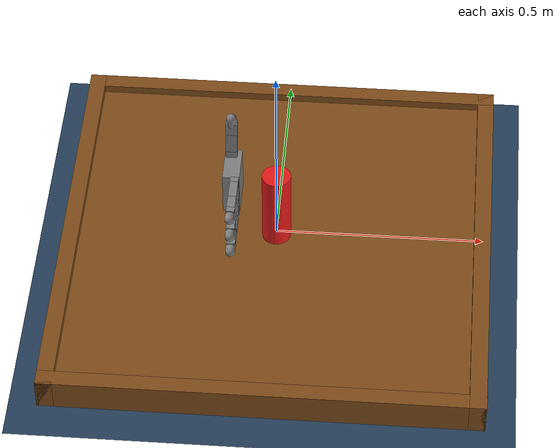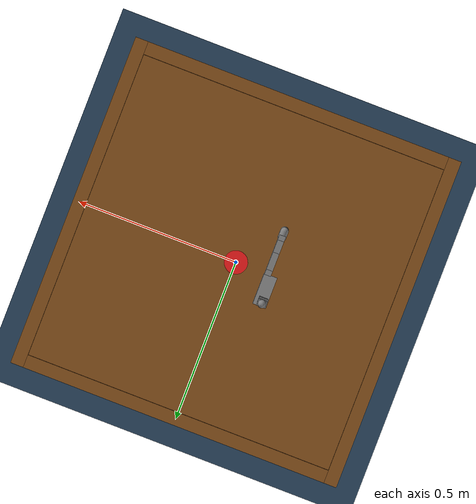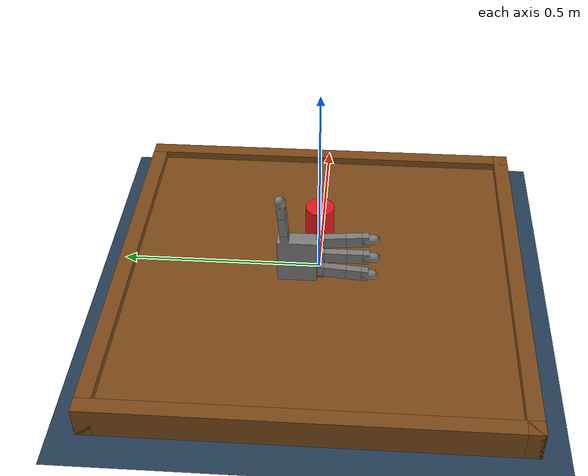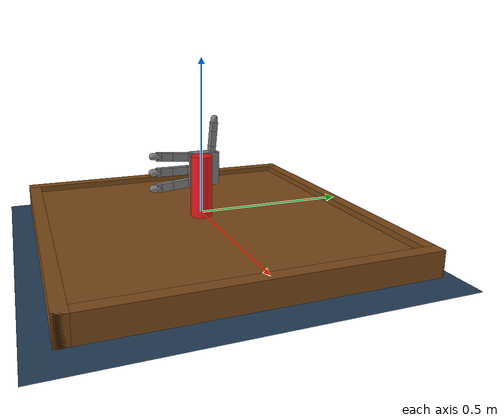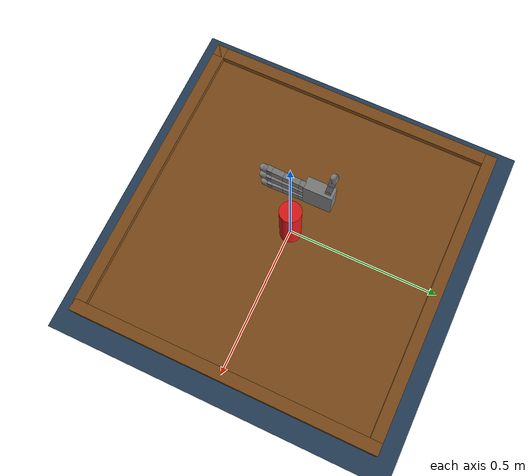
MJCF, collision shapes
<mujoco model="right_allegro_hand scene">
  <compiler angle="radian" meshdir="assets/" autolimits="true"/>
  <option cone="elliptic"/>
  <visual>
    <global azimuth="130" elevation="-40"/>
    <quality shadowsize="8192"/>
    <rgba haze="0.15 0.25 0.35 1"/>
  </visual>
  <statistic meansize="0.0812824" extent="0.3" center="0 0 0"/>
  <default class="main">
    <default class="allegro_right">
      <joint damping="0.1"/>
      <geom density="800"/>
      <general biastype="affine" biasprm="0 -1 0 0 0 0 0 0 0 0"/>
      <default class="visual">
        <geom type="mesh" contype="0" conaffinity="0" group="2" material="black"/>
        <default class="palm_visual">
          <geom mesh="base_link"/>
        </default>
        <default class="base_visual">
          <geom mesh="link_0.0"/>
        </default>
        <default class="proximal_visual">
          <geom mesh="link_1.0"/>
        </default>
        <default class="medial_visual">
          <geom mesh="link_2.0"/>
        </default>
        <default class="distal_visual">
          <geom mesh="link_3.0"/>
        </default>
        <default class="fingertip_visual">
          <geom material="white" mesh="link_3.0_tip"/>
        </default>
        <default class="thumbtip_visual">
          <geom material="white" mesh="link_15.0_tip"/>
        </default>
      </default>
      <default class="collision">
        <geom type="box" group="3"/>
        <default class="palm_collision">
          <geom size="0.0204 0.0565 0.0475"/>
        </default>
        <default class="base_collision">
          <geom size="0.0098 0.01375 0.0082"/>
          <default class="thumb_base_collision">
            <geom size="0.0179 0.017 0.02275"/>
          </default>
        </default>
        <default class="proximal_collision">
          <geom size="0.0098 0.01375 0.027"/>
          <default class="thumb_proximal_collision">
            <geom size="0.0098 0.01375 0.00885"/>
          </default>
        </default>
        <default class="medial_collision">
          <geom size="0.0098 0.01375 0.0192"/>
          <default class="thumb_medial_collision">
            <geom size="0.0098 0.01375 0.0257"/>
          </default>
        </default>
        <default class="distal_collision">
          <geom size="0.0098 0.01375 0.008"/>
          <default class="thumb_distal_collision">
            <geom size="0.0098 0.01375 0.0157"/>
          </default>
        </default>
        <default class="fingertip_collision">
          <geom size="0.012 0.01 0" type="capsule"/>
          <default class="thumbtip_collision">
            <geom size="0.012 0.008 0"/>
          </default>
        </default>
      </default>
      <default class="rootx_c">
        <joint range="-20 20"/>
        <general ctrlrange="-5 5" gainprm="100 0 0 0 0 0 0 0 0 0" biasprm="0 -100 0 0 0 0 0 0 0 0"/>
      </default>
      <default class="rooty_c">
        <joint range="-20 20"/>
        <general ctrlrange="-5 5" gainprm="100 0 0 0 0 0 0 0 0 0" biasprm="0 -100 0 0 0 0 0 0 0 0"/>
      </default>
      <default class="rootz_c">
        <joint range="-20 20"/>
        <general ctrlrange="-5 5" gainprm="100 0 0 0 0 0 0 0 0 0" biasprm="0 -100 0 0 0 0 0 0 0 0"/>
      </default>
      <default class="base">
        <joint range="-0.47 0.47"/>
        <general ctrlrange="-0.47 0.47"/>
      </default>
      <default class="proximal">
        <joint range="-0.196 1.61"/>
        <general ctrlrange="-0.196 1.61"/>
      </default>
      <default class="medial">
        <joint range="-0.174 1.709"/>
        <general ctrlrange="-0.174 1.709"/>
      </default>
      <default class="distal">
        <joint range="-0.227 1.618"/>
        <general ctrlrange="-0.227 1.618"/>
      </default>
      <default class="thumb_base">
        <joint range="0.263 1.396"/>
        <general ctrlrange="0.263 1.396"/>
      </default>
      <default class="thumb_proximal">
        <joint range="-0.105 1.163"/>
        <general ctrlrange="-0.105 1.163"/>
      </default>
      <default class="thumb_medial">
        <joint range="-0.189 1.644"/>
        <general ctrlrange="-0.189 1.644"/>
      </default>
      <default class="thumb_distal">
        <joint range="-0.162 1.719"/>
        <general ctrlrange="-0.162 1.719"/>
      </default>
    </default>
  </default>
  <asset>
    <texture type="skybox" builtin="gradient" rgb1="0.3 0.5 0.7" rgb2="0 0 0" width="512" height="3072"/>
    <texture type="2d" name="groundplane" builtin="checker" mark="edge" rgb1="0.2 0.3 0.4" rgb2="0.1 0.2 0.3" markrgb="0.8 0.8 0.8" width="300" height="300"/>
    <material name="black" rgba="0.2 0.2 0.2 1"/>
    <material name="white" rgba="0.9 0.9 0.9 1"/>
    <material name="groundplane" texture="groundplane" texuniform="true" texrepeat="5 5" reflectance="0.2"/>
    <mesh name="base_link" file="base_link.stl"/>
    <mesh name="link_0.0" file="link_0.0.stl"/>
    <mesh name="link_1.0" file="link_1.0.stl"/>
    <mesh name="link_2.0" file="link_2.0.stl"/>
    <mesh name="link_3.0" file="link_3.0.stl"/>
    <mesh name="link_3.0_tip" file="link_3.0_tip.stl"/>
    <mesh name="link_12.0_right" file="link_12.0_right.stl"/>
    <mesh name="link_13.0" file="link_13.0.stl"/>
    <mesh name="link_14.0" file="link_14.0.stl"/>
    <mesh name="link_15.0" file="link_15.0.stl"/>
    <mesh name="link_15.0_tip" file="link_15.0_tip.stl"/>
  </asset>
  <worldbody>
    <geom name="floor" size="0 0 0.05" pos="0 0 -0.1" type="plane" material="groundplane"/>
    <light pos="0 0 1" dir="0 0 -1"/>
    <light pos="0.3 0 1.5" dir="0 0 -1" directional="true"/>
    <body name="rhand" childclass="allegro_right" pos="0 0 0.12" quat="0 0 0 0">
      <joint name="rootx" pos="0 0 0" axis="1 0 0" type="slide" range="-20 20" damping="100"/>
      <joint name="rooty" pos="0 0 0" axis="0 1 0" type="slide" range="-20 20" damping="100"/>
      <joint name="rootz" pos="0 0 0" axis="0 0 1" type="slide" range="-20 20" damping="100"/>
      <body name="palm" childclass="allegro_right" pos="-0.1 0 0" quat="0.707107 0.707107 0 0">
        <geom class="palm_visual" mesh="base_link"/>
        <geom class="palm_collision" pos="-0.0093 0 -0.0475" mass="0"/>
        <body name="ff_base" pos="0 0.0435 -0.001542" quat="0.999048 -0.0436194 0 0">
          <joint name="ffj0" class="base" pos="0 0 0" axis="0 0 1"/>
          <geom class="base_visual" mesh="link_0.0"/>
          <geom class="base_collision" pos="0 0 0.0082" mass="0"/>
          <body name="ff_proximal" pos="0 0 0.0164">
            <joint name="ffj1" class="proximal" pos="0 0 0" axis="0 1 0"/>
            <geom class="proximal_visual" mesh="link_1.0"/>
            <geom class="proximal_collision" pos="0 0 0.027" mass="0"/>
            <body name="ff_medial" pos="0 0 0.054">
              <joint name="ffj2" class="medial" pos="0 0 0" axis="0 1 0"/>
              <geom class="medial_visual" mesh="link_2.0"/>
              <geom class="medial_collision" pos="0 0 0.0192" mass="0"/>
              <body name="ff_distal" pos="0 0 0.0384">
                <joint name="ffj3" class="distal" pos="0 0 0" axis="0 1 0"/>
                <geom class="distal_visual" mesh="link_3.0"/>
                <geom class="distal_collision" pos="0 0 0.008" mass="0"/>
                <body name="ff_tip">
                  <geom class="fingertip_visual" pos="0 0 0.0267" mesh="link_3.0_tip"/>
                  <geom class="fingertip_collision" pos="0 0 0.019" mass="0"/>
                </body>
              </body>
            </body>
          </body>
        </body>
        <body name="mf_base" pos="0 0 0.0007">
          <joint name="mfj0" class="base" pos="0 0 0" axis="0 0 1"/>
          <geom class="base_visual" mesh="link_0.0"/>
          <geom class="base_collision" pos="0 0 0.0082" mass="0"/>
          <body name="mf_proximal" pos="0 0 0.0164">
            <joint name="mfj1" class="proximal" pos="0 0 0" axis="0 1 0"/>
            <geom class="proximal_visual" mesh="link_1.0"/>
            <geom class="proximal_collision" pos="0 0 0.027" mass="0"/>
            <body name="mf_medial" pos="0 0 0.054">
              <joint name="mfj2" class="medial" pos="0 0 0" axis="0 1 0"/>
              <geom class="medial_visual" mesh="link_2.0"/>
              <geom class="medial_collision" pos="0 0 0.0192" mass="0"/>
              <body name="mf_distal" pos="0 0 0.0384">
                <joint name="mfj3" class="distal" pos="0 0 0" axis="0 1 0"/>
                <geom class="distal_visual" mesh="link_3.0"/>
                <geom class="distal_collision" pos="0 0 0.008" mass="0"/>
                <body name="mf_tip">
                  <geom class="fingertip_visual" pos="0 0 0.0267" mesh="link_3.0_tip"/>
                  <geom class="fingertip_collision" pos="0 0 0.019" mass="0"/>
                </body>
              </body>
            </body>
          </body>
        </body>
        <body name="rf_base" pos="0 -0.0435 -0.001542" quat="0.999048 0.0436194 0 0">
          <joint name="rfj0" class="base" pos="0 0 0" axis="0 0 1"/>
          <geom class="base_visual" mesh="link_0.0"/>
          <geom class="base_collision" pos="0 0 0.0082" mass="0"/>
          <body name="rf_proximal" pos="0 0 0.0164">
            <joint name="rfj1" class="proximal" pos="0 0 0" axis="0 1 0"/>
            <geom class="proximal_visual" mesh="link_1.0"/>
            <geom class="proximal_collision" pos="0 0 0.027" mass="0"/>
            <body name="rf_medial" pos="0 0 0.054">
              <joint name="rfj2" class="medial" pos="0 0 0" axis="0 1 0"/>
              <geom class="medial_visual" mesh="link_2.0"/>
              <geom class="medial_collision" pos="0 0 0.0192" mass="0"/>
              <body name="rf_distal" pos="0 0 0.0384">
                <joint name="rfj3" class="distal" pos="0 0 0" axis="0 1 0"/>
                <geom class="distal_visual" mesh="link_3.0"/>
                <geom class="distal_collision" pos="0 0 0.008" mass="0"/>
                <body name="rf_tip">
                  <geom class="fingertip_visual" pos="0 0 0.0267" mesh="link_3.0_tip"/>
                  <geom class="fingertip_collision" pos="0 0 0.019" mass="0"/>
                </body>
              </body>
            </body>
          </body>
        </body>
        <body name="th_base" pos="-0.0182 0.019333 -0.045987" quat="0.477714 -0.521334 -0.521334 -0.477714">
          <joint name="thj0" class="thumb_base" pos="0 0 0" axis="-1 0 0"/>
          <geom class="visual" mesh="link_12.0_right"/>
          <geom class="thumb_base_collision" pos="-0.0179 0.009 0.0145" mass="0"/>
          <body name="th_proximal" pos="-0.027 0.005 0.0399">
            <joint name="thj1" class="thumb_proximal" pos="0 0 0" axis="0 0 1"/>
            <geom class="visual" mesh="link_13.0"/>
            <geom class="thumb_proximal_collision" pos="0 0 0.00885" mass="0"/>
            <body name="th_medial" pos="0 0 0.0177">
              <joint name="thj2" class="thumb_medial" pos="0 0 0" axis="0 1 0"/>
              <geom class="visual" mesh="link_14.0"/>
              <geom class="thumb_medial_collision" pos="0 0 0.0257" mass="0"/>
              <body name="th_distal" pos="0 0 0.0514">
                <joint name="thj3" class="thumb_distal" pos="0 0 0" axis="0 1 0"/>
                <geom class="visual" mesh="link_15.0"/>
                <geom class="thumb_distal_collision" pos="0 0 0.0157" mass="0"/>
                <body name="th_tip">
                  <geom class="thumbtip_visual" pos="0 0 0.0423" mesh="link_15.0_tip"/>
                  <geom class="thumbtip_collision" pos="0 0 0.035" mass="0"/>
                </body>
              </body>
            </body>
          </body>
        </body>
      </body>
    </body>
    <body name="table" pos="0 0 -0.04">
      <geom name="table_top" size="0.5 0.5 0.02" type="box" rgba="0.5 0.3 0.1 1"/>
      <geom name="table_border1" size="0.02 0.52 0.04" pos="0.5 0 0" type="box" rgba="0.5 0.3 0.1 1"/>
      <geom name="table_border2" size="0.02 0.52 0.04" pos="-0.5 0 0" type="box" rgba="0.5 0.3 0.1 1"/>
      <geom name="table_border3" size="0.52 0.02 0.04" pos="0 0.5 0" type="box" rgba="0.5 0.3 0.1 1"/>
      <geom name="table_border4" size="0.52 0.02 0.04" pos="0 -0.5 0" type="box" rgba="0.5 0.3 0.1 1"/>
    </body>
    <body name="cylinder_object" pos="0 0 0.09" quat="0 0 0 0">
      <joint type="free"/>
      <geom size="0.035 0.1" type="cylinder" friction="1 0.1 0.1" density="10" rgba="0.9 0.1 0.1 1"/>
    </body>
  </worldbody>
  <contact>
    <exclude body1="palm" body2="ff_base"/>
    <exclude body1="palm" body2="mf_base"/>
    <exclude body1="palm" body2="rf_base"/>
    <exclude body1="palm" body2="th_base"/>
    <exclude body1="palm" body2="th_proximal"/>
  </contact>
  <actuator>
    <general name="rootx" class="rootx_c" joint="rootx"/>
    <general name="rooty" class="rooty_c" joint="rooty"/>
    <general name="rootz" class="rootz_c" joint="rootz"/>
    <general name="ffa0" class="base" joint="ffj0"/>
    <general name="ffa1" class="proximal" joint="ffj1"/>
    <general name="ffa2" class="medial" joint="ffj2"/>
    <general name="ffa3" class="distal" joint="ffj3"/>
    <general name="mfa0" class="base" joint="mfj0"/>
    <general name="mfa1" class="proximal" joint="mfj1"/>
    <general name="mfa2" class="medial" joint="mfj2"/>
    <general name="mfa3" class="distal" joint="mfj3"/>
    <general name="rfa0" class="base" joint="rfj0"/>
    <general name="rfa1" class="proximal" joint="rfj1"/>
    <general name="rfa2" class="medial" joint="rfj2"/>
    <general name="rfa3" class="distal" joint="rfj3"/>
    <general name="tha0" class="thumb_base" joint="thj0"/>
    <general name="tha1" class="thumb_proximal" joint="thj1"/>
    <general name="tha2" class="thumb_medial" joint="thj2"/>
    <general name="tha3" class="thumb_distal" joint="thj3"/>
  </actuator>
</mujoco>
